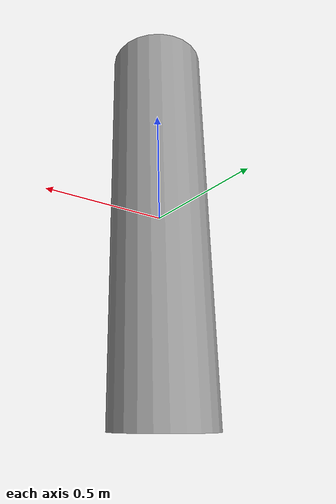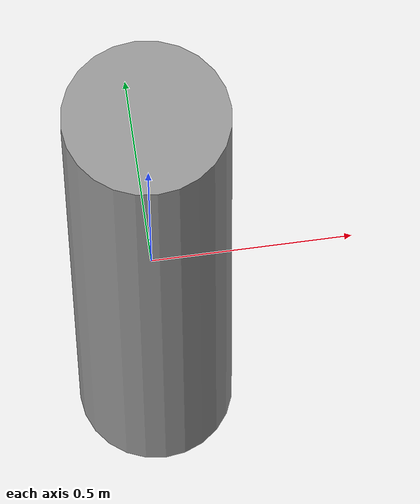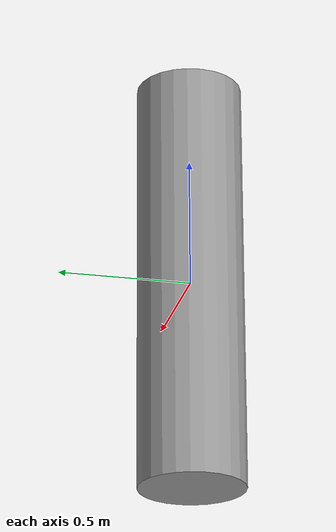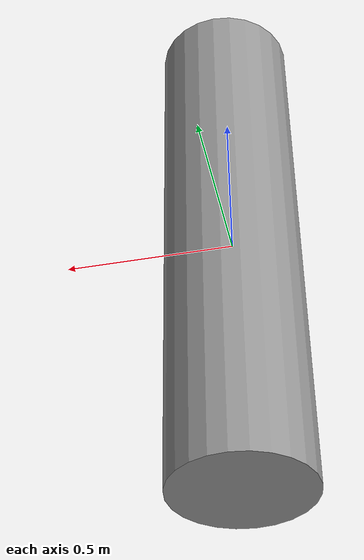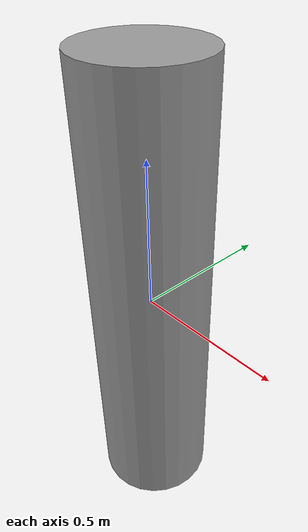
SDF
<?xml version='1.0'?>
<sdf version='1.6'>
  <model name='person_cylinder'>
    <static>false</static>
    <link name='link'>
      <pose>0 0 0 0 0 0</pose>
      <inertial>
        <mass>10.0</mass>
        <inertia>
          <ixx>1.0</ixx>
          <iyy>1.0</iyy>
          <izz>1.0</izz>
        </inertia>
      </inertial>
      <visual name='visual'>
        <geometry>
          <cylinder>
            <radius>0.2</radius>
            <length>1.6</length>
          </cylinder>
        </geometry>
        <material>
          <ambient>0.6 0.6 0.6 1</ambient>
          <diffuse>0.6 0.6 0.6 1</diffuse>
        </material>
      </visual>
      <collision name='collision'>
        <geometry>
          <cylinder>
            <radius>0.2</radius>
            <length>1.6</length>
          </cylinder>
        </geometry>
      </collision>
    </link>
  </model>
</sdf>
